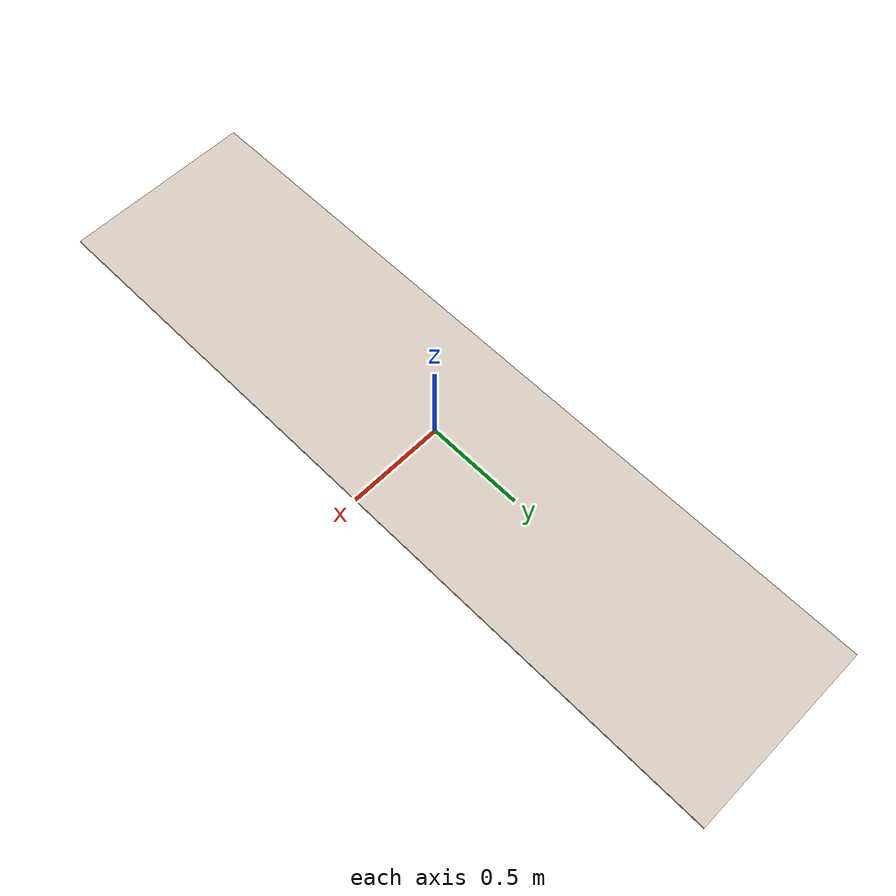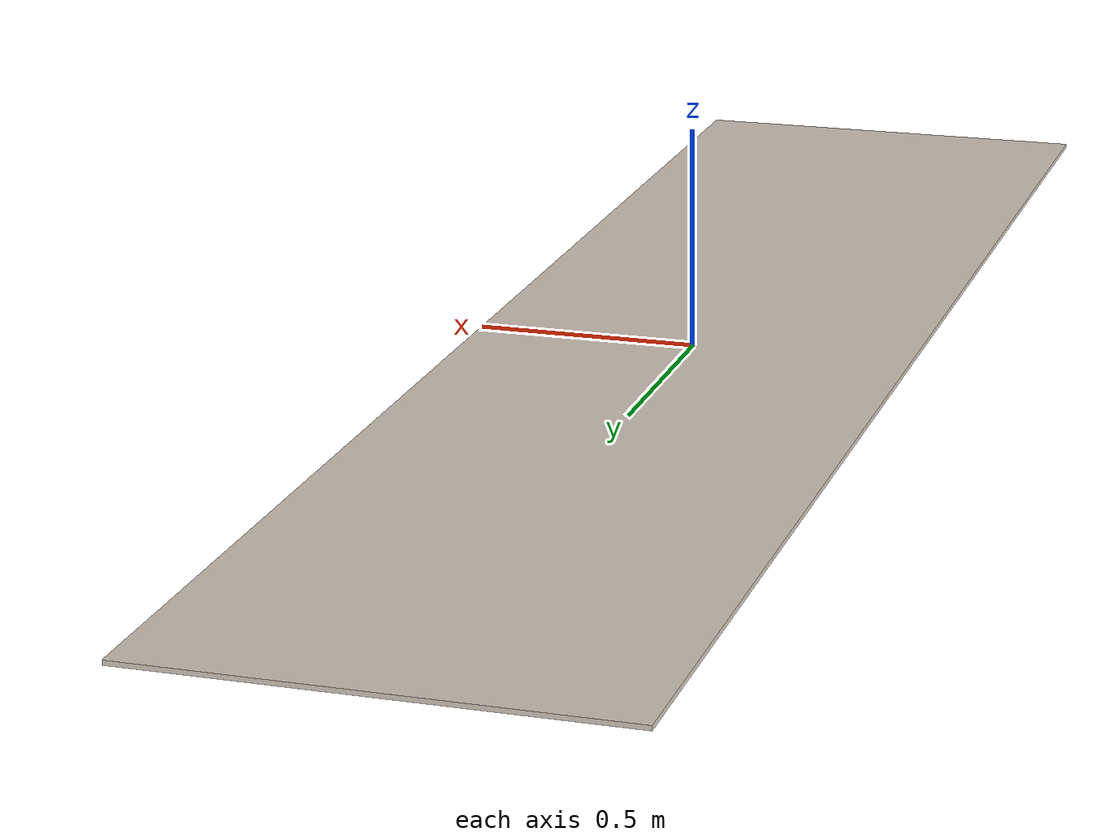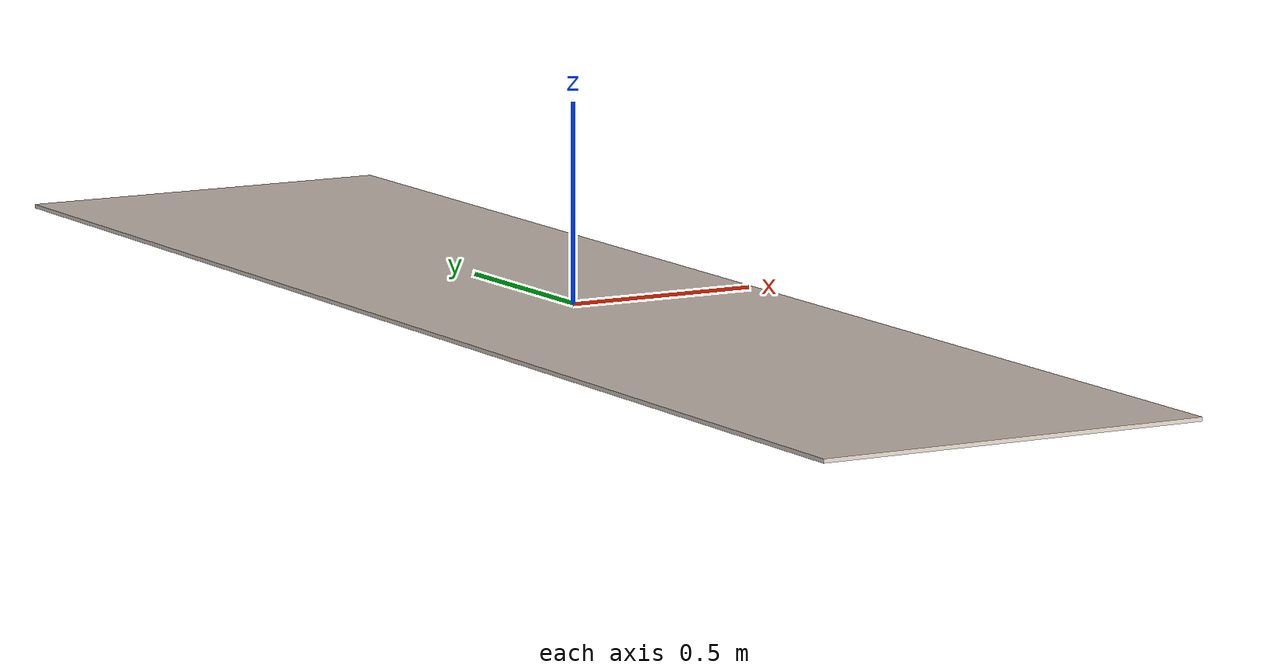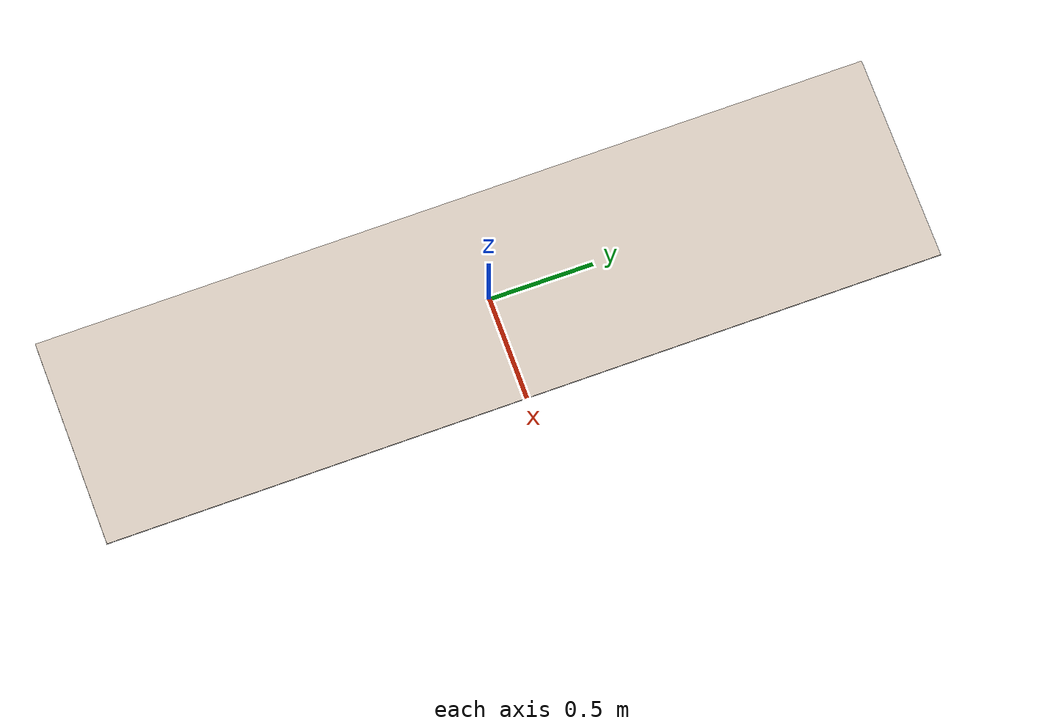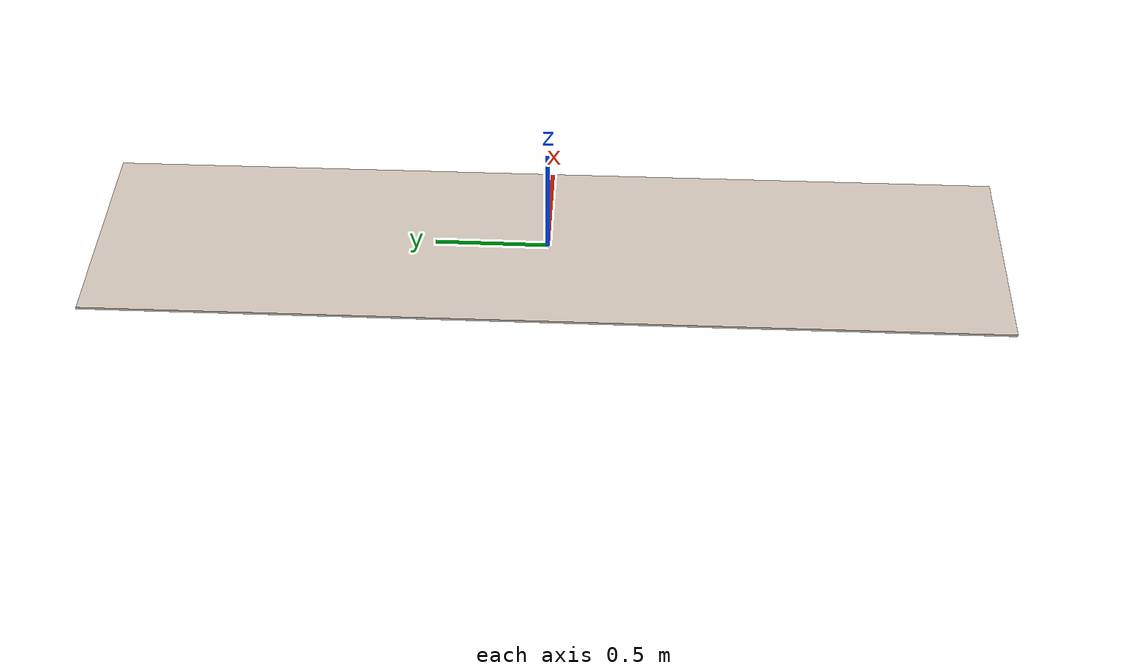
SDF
<?xml version="1.0" ?>
<sdf version="1.6">
  <model name="corridor_floor_vertical">
    <static>true</static>
    <link name="link">
      <pose>0 0 0 0 0 0</pose>
      <visual name="visual">
        <geometry>
          <box>
            <size>1 4 0.01</size>
          </box>
        </geometry>
        <material>
          <ambient>0.8 0.75 0.7 1</ambient>
          <diffuse>0.85 0.8 0.75 1</diffuse>
          <specular>0.2 0.2 0.2 1</specular>
        </material>
      </visual>
      <collision name="collision">
        <geometry>
          <box>
            <size>1 4 0.01</size>
          </box>
        </geometry>
      </collision>
    </link>
  </model>
</sdf>
